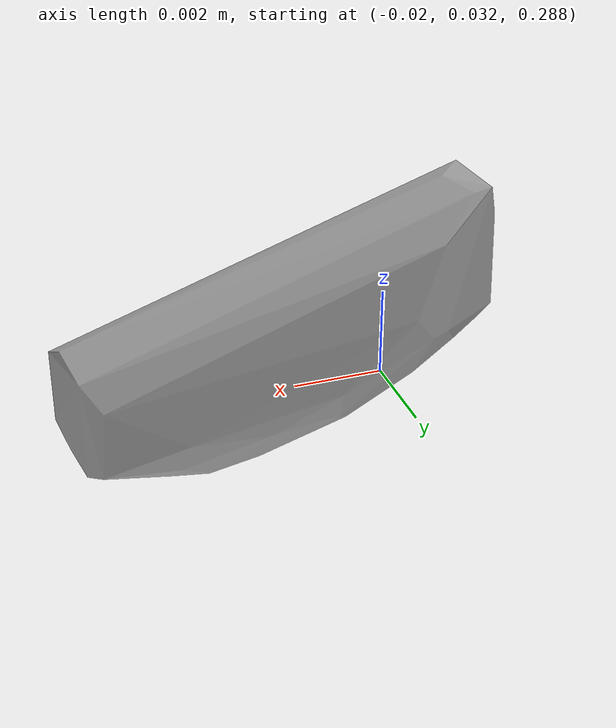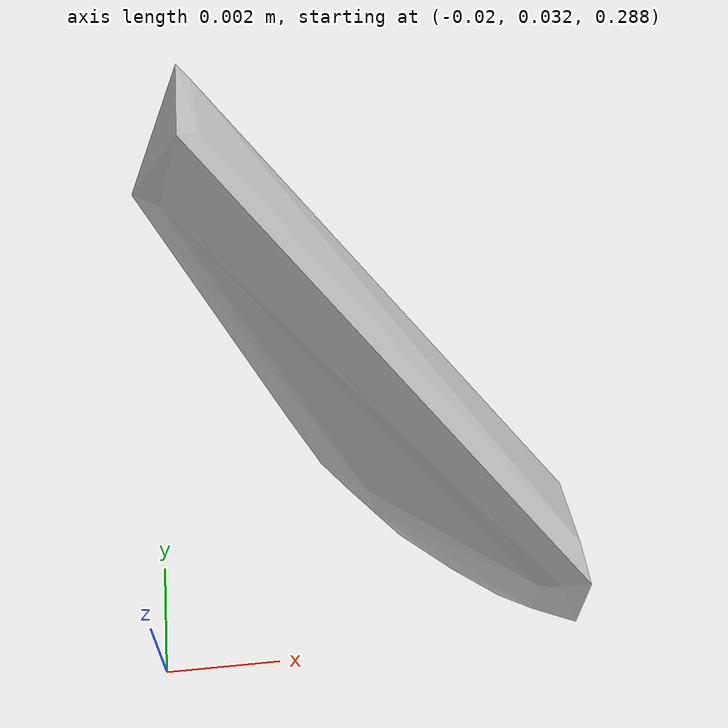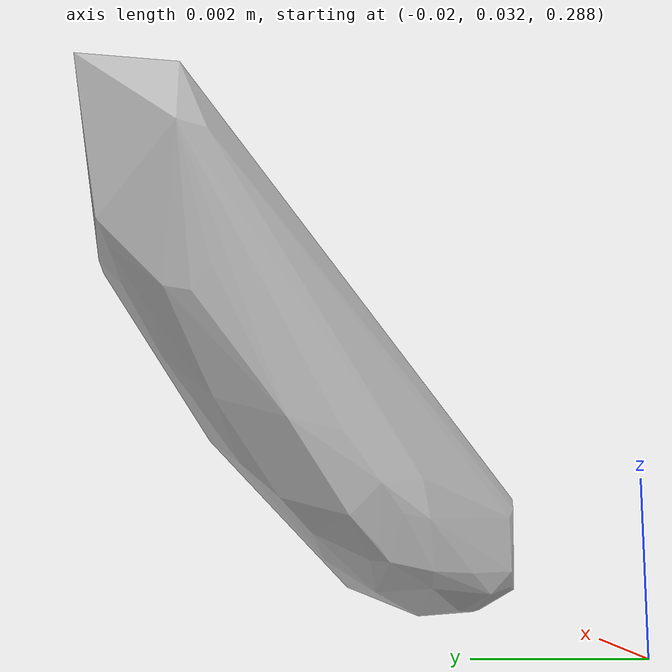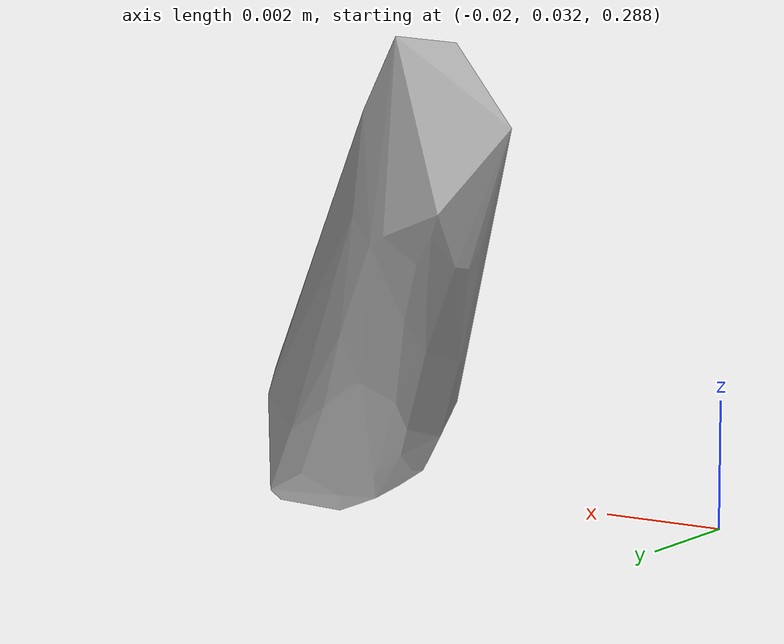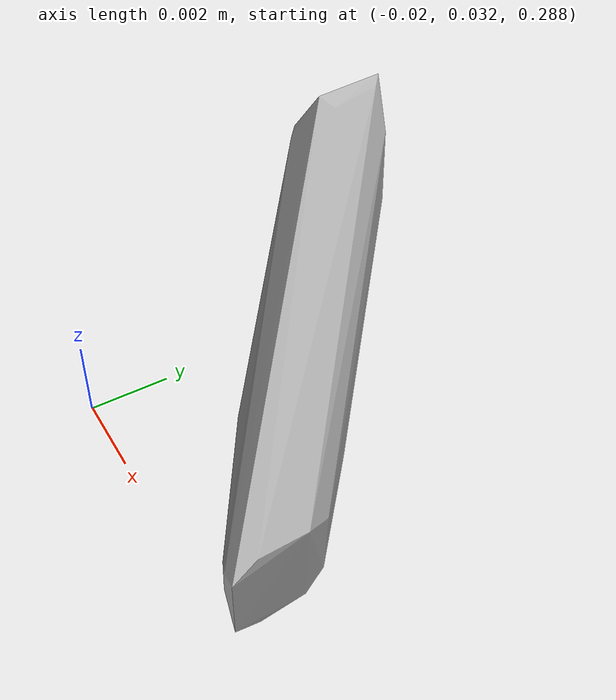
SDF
<?xml version="1.0"?>
<sdf version="1.7">
  <model name="vascular_partexport009">
    <link name="vascular_partexport009_body">
      <visual name="vascular_partexport009_visual">
        <geometry>
          <mesh>
            <uri>vascular_partexport009.obj</uri>
          </mesh>
        </geometry>
      </visual>
      <collision name="vascular_partexport009_collision">
        <geometry>
          <mesh>
            <uri>vascular_partexport009.obj</uri>
          </mesh>
        </geometry>
      </collision>
    </link>
    <frame name="vascular_partexport009_center">
      <pose relative_to="vascular_partexport009_body">0 0 0 0 0 0</pose>
    </frame>
  </model>
</sdf>
